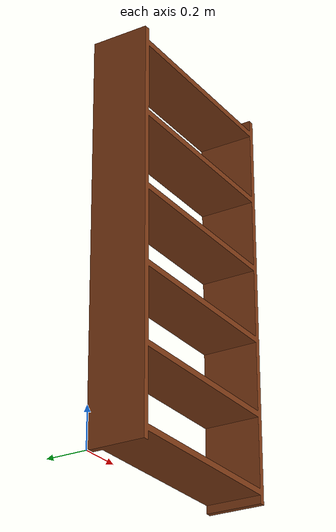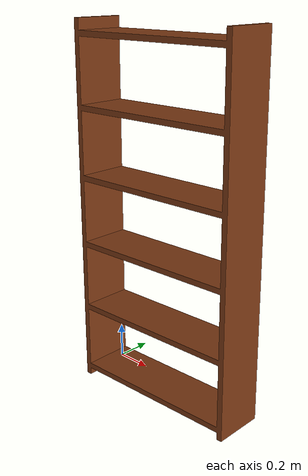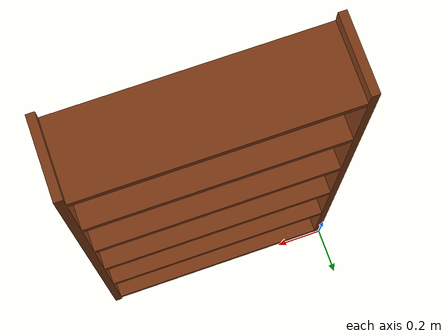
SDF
<?xml version="1.0" ?>
<sdf version="1.6">
  <model name="bookshelf_d">
    <link name="link">
      <inertial>
        <mass>50</mass>
        <inertia>
          <ixx>19.87420</ixx>
          <ixy>0</ixy>
          <ixz>0</ixz>
          <iyy>49.12631347041</iyy>
          <iyz>0</iyz>
          <izz>30.223050</izz>
        </inertia>
      </inertial>
      <collision name="book_shelf_surface">
        <pose>0.5 -0.13 1.2 0 0 0</pose>
        <geometry>
          <box>
            <size>0.30 0.30 0.02</size>
          </box>
        </geometry>
      </collision>
      <visual name="visual">
	    <geometry>
          <mesh>
          <uri>model://bookshelf_d/meshes/SHELVES.dae</uri>
          </mesh>
        </geometry>
        <meta>
          <layer>1</layer>
        </meta>
      </visual>
    </link>
  <static>1</static>
  </model>
</sdf>
